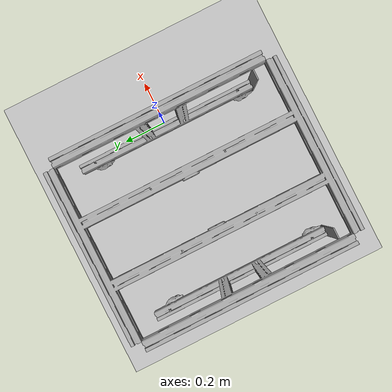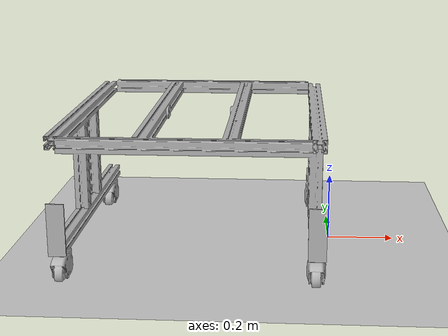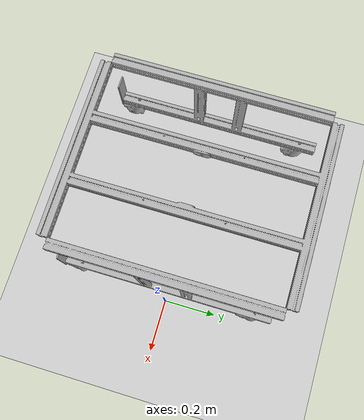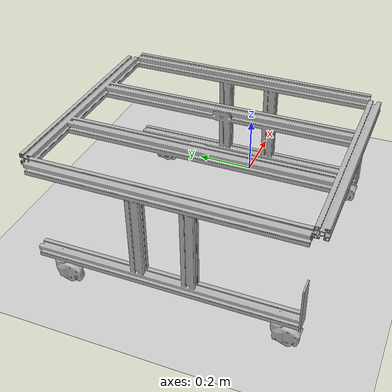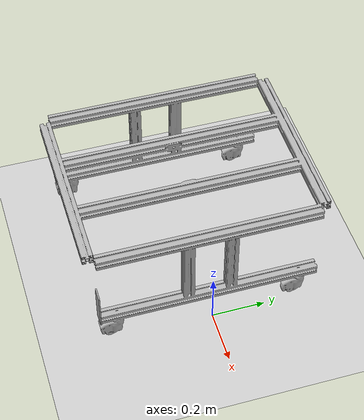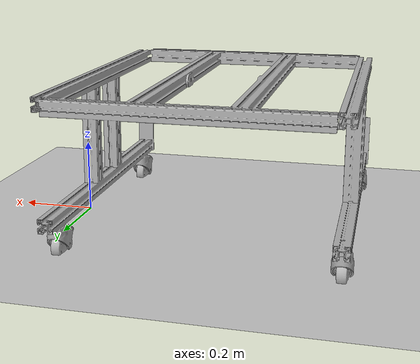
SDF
<?xml version="1.0" ?>
<sdf version="1.5">
  <world name="default">
    <!-- A global light source -->
    <include>
      <uri>model://sun</uri>
    </include>
    <!-- A ground plane -->
    <include>
      <uri>model://ground_plane</uri>
    </include>

    <model name='rb2_simple_cart'>
      <pose>-0.4 0 0 0 0 -1.57</pose>
      <link name='link_0'>
        <pose>0 0 0 0 -0 0</pose>
        <inertial>
          <mass>50</mass>
          <inertia>
            <ixx>0.166667</ixx>
            <ixy>0</ixy>
            <ixz>0</ixz>
            <iyy>0.166667</iyy>
            <iyz>0</iyz>
            <izz>0.166667</izz>
          </inertia>
          <pose>0 0 0 0 -0 0</pose>
        </inertial>
        <gravity>1</gravity>
        <self_collide>0</self_collide>
        <kinematic>0</kinematic>
        <visual name='visual0'>
          <pose>0 0 -0.025 0 -0 0</pose>
          <geometry>
            <mesh>
              <uri>model://rb2_simple_cart/meshes/cart_structure.dae</uri>
              <scale>1 1 1</scale>
            </mesh>
          </geometry>
          <material>
            <lighting>1</lighting>
            <ambient>0.3 0.3 0.3 1</ambient>
            <diffuse>0.7 0.7 0.7 1</diffuse>
            <specular>0.01 0.01 0.01 1</specular>
            <emissive>0 0 0 1</emissive>
            <shader type='vertex'>
              <normal_map>__default__</normal_map>
            </shader>
          </material>
          <cast_shadows>1</cast_shadows>
          <transparency>0</transparency>
        </visual>
        <collision name='collision0'>
          <laser_retro>0</laser_retro>
          <max_contacts>10</max_contacts>
          <pose>0 -0 0.4 0 -0 0</pose>
          <geometry>
            <box>
              <size>0.85 0.8 0.05</size>
            </box>
          </geometry>
          <surface>
            <contact>
              <ode/>
            </contact>
            <bounce/>
            <friction>
              <torsional>
                <ode/>
              </torsional>
              <ode/>
            </friction>
          </surface>
        </collision>
        <collision name='collision1'>
          <laser_retro>0</laser_retro>
          <max_contacts>10</max_contacts>
          <pose relative_to='link_0'>-0.075 0.35 0.2145 0 -0 0</pose>
          <geometry>
            <box>
              <size>0.03 0.03 0.4</size>
            </box>
          </geometry>
          <surface>
            <contact>
              <ode/>
            </contact>
            <bounce/>
            <friction>
              <torsional>
                <ode/>
              </torsional>
              <ode/>
            </friction>
          </surface>
        </collision>
        <collision name='collision2'>
          <laser_retro>0</laser_retro>
          <max_contacts>10</max_contacts>
          <pose relative_to='link_0'>0.075 0.35 0.2145 0 -0 0</pose>
          <geometry>
            <box>
              <size>0.03 0.03 0.419</size>
            </box>
          </geometry>
          <surface>
            <contact>
              <ode/>
            </contact>
            <bounce/>
            <friction>
              <torsional>
                <ode/>
              </torsional>
              <ode/>
            </friction>
          </surface>
        </collision>
        <collision name='collision3'>
          <laser_retro>0</laser_retro>
          <max_contacts>10</max_contacts>
          <pose relative_to='link_0'>0.075 -0.35 0.2145 0 -0 0</pose>
          <geometry>
            <box>
              <size>0.03 0.03 0.419</size>
            </box>
          </geometry>
          <surface>
            <contact>
              <ode/>
            </contact>
            <bounce/>
            <friction>
              <torsional>
                <ode/>
              </torsional>
              <ode/>
            </friction>
          </surface>
        </collision>
        <collision name='collision4'>
          <laser_retro>0</laser_retro>
          <max_contacts>10</max_contacts>
          <pose relative_to='link_0'>-0.075 -0.35 0.2145 0 -0 0</pose>
          <geometry>
            <box>
              <size>0.03 0.03 0.419</size>
            </box>
          </geometry>
          <surface>
            <contact>
              <ode/>
            </contact>
            <bounce/>
            <friction>
              <torsional>
                <ode/>
              </torsional>
              <ode/>
            </friction>
          </surface>
        </collision>
        <collision name='collision5'>
          <laser_retro>0</laser_retro>
          <max_contacts>10</max_contacts>
          <pose relative_to='link_0'>0 0.35 0.025 0 -0 0</pose>
          <geometry>
            <box>
              <size>0.82 0.03 0.1</size>
            </box>
          </geometry>
          <surface>
            <contact>
              <ode/>
            </contact>
            <bounce/>
            <friction>
              <torsional>
                <ode/>
              </torsional>
              <ode/>
            </friction>
          </surface>
        </collision>
        <collision name='collision6'>
          <laser_retro>0</laser_retro>
          <max_contacts>10</max_contacts>
          <pose relative_to='link_0'>0 -0.35 0.025 0 -0 0</pose>
          <geometry>
            <box>
              <size>0.82 0.03 0.1</size>
            </box>
          </geometry>
          <surface>
            <contact>
              <ode/>
            </contact>
            <bounce/>
            <friction>
              <torsional>
                <ode/>
              </torsional>
              <ode/>
            </friction>
          </surface>
        </collision>
        <enable_wind>0</enable_wind>
      </link>
      <link name='link_reflector_1'>
        <pose relative_to='link_0'>0.41 -0.355 0.15 0 -0 0</pose>
        <gravity>0</gravity>
        <visual name='visual0'>
          <pose>0 0 -0 0 -0 0</pose>
          <geometry>
            <box>
              <size>0.005 0.05 0.15</size>
            </box>
          </geometry>
          <material>
            <lighting>1</lighting>
            <ambient>0.3 0.3 0.3 1</ambient>
            <diffuse>0.7 0.7 0.7 1</diffuse>
            <specular>0.01 0.01 0.01 1</specular>
            <emissive>0 0 0 1</emissive>
            <shader type='vertex'>
              <normal_map>__default__</normal_map>
            </shader>
          </material>
        </visual>
        <collision name='collision0'>
          <pose>0 0 -0 0 -0 0</pose>
          <geometry>
            <box>
              <size>0.005 0.05 0.15</size>
            </box>
          </geometry>
          <laser_retro>8000</laser_retro>
          <max_contacts>10</max_contacts>
          <surface>
            <contact>
              <ode/>
            </contact>
            <bounce/>
            <friction>
              <torsional>
                <ode/>
              </torsional>
              <ode/>
            </friction>
          </surface>
        </collision>
        <self_collide>0</self_collide>
        <inertial>
          <pose>0 0 0 0 -0 0</pose>
          <inertia>
            <ixx>1</ixx>
            <ixy>0</ixy>
            <ixz>0</ixz>
            <iyy>1</iyy>
            <iyz>0</iyz>
            <izz>1</izz>
          </inertia>
          <mass>1</mass>
        </inertial>
        <enable_wind>0</enable_wind>
        <kinematic>0</kinematic>
      </link>
      <link name='link_reflector_2'>
        <pose relative_to='link_0'>0.41 0.355 0.15 0 -0 0</pose>
        <gravity>0</gravity>
        <visual name='visual0'>
          <pose>0 0 -0 0 -0 0</pose>
          <geometry>
            <box>
              <size>0.005 0.05 0.15</size>
            </box>
          </geometry>
          <material>
            <lighting>1</lighting>
            <ambient>0.3 0.3 0.3 1</ambient>
            <diffuse>0.7 0.7 0.7 1</diffuse>
            <specular>0.01 0.01 0.01 1</specular>
            <emissive>0 0 0 1</emissive>
            <shader type='vertex'>
              <normal_map>__default__</normal_map>
            </shader>
          </material>
        </visual>
        <collision name='collision0'>
          <pose>0 0 -0 0 -0 0</pose>
          <geometry>
            <box>
              <size>0.005 0.05 0.15</size>
            </box>
          </geometry>
          <laser_retro>8000</laser_retro>
          <max_contacts>10</max_contacts>
          <surface>
            <contact>
              <ode/>
            </contact>
            <bounce/>
            <friction>
              <torsional>
                <ode/>
              </torsional>
              <ode/>
            </friction>
          </surface>
        </collision>
        <self_collide>0</self_collide>
        <inertial>
          <pose>0 0 0 0 -0 0</pose>
          <inertia>
            <ixx>1</ixx>
            <ixy>0</ixy>
            <ixz>0</ixz>
            <iyy>1</iyy>
            <iyz>0</iyz>
            <izz>1</izz>
          </inertia>
          <mass>1</mass>
        </inertial>
        <enable_wind>0</enable_wind>
        <kinematic>0</kinematic>
      </link>
      <joint name='joint_0_to_reflector_1' type='fixed'>
        <parent>link_0</parent>
        <child>link_reflector_1</child>
        <pose>0 0 0 0 -0 0</pose>
        <physics>
          <ode>
            <limit>
              <cfm>0</cfm>
              <erp>0.2</erp>
            </limit>
            <suspension>
              <cfm>0</cfm>
              <erp>0.2</erp>
            </suspension>
          </ode>
        </physics>
      </joint>
      <joint name='joint_0_to_reflector_2' type='fixed'>
        <parent>link_0</parent>
        <child>link_reflector_2</child>
        <pose>0 0 0 0 -0 0</pose>
        <physics>
          <ode>
            <limit>
              <cfm>0</cfm>
              <erp>0.2</erp>
            </limit>
            <suspension>
              <cfm>0</cfm>
              <erp>0.2</erp>
            </suspension>
          </ode>
        </physics>
      </joint>
      <static>0</static>
      <allow_auto_disable>1</allow_auto_disable>
      <pose>-0.243586 -3.46586 0 0 -0 0</pose>
    </model>

  </world>
</sdf>
